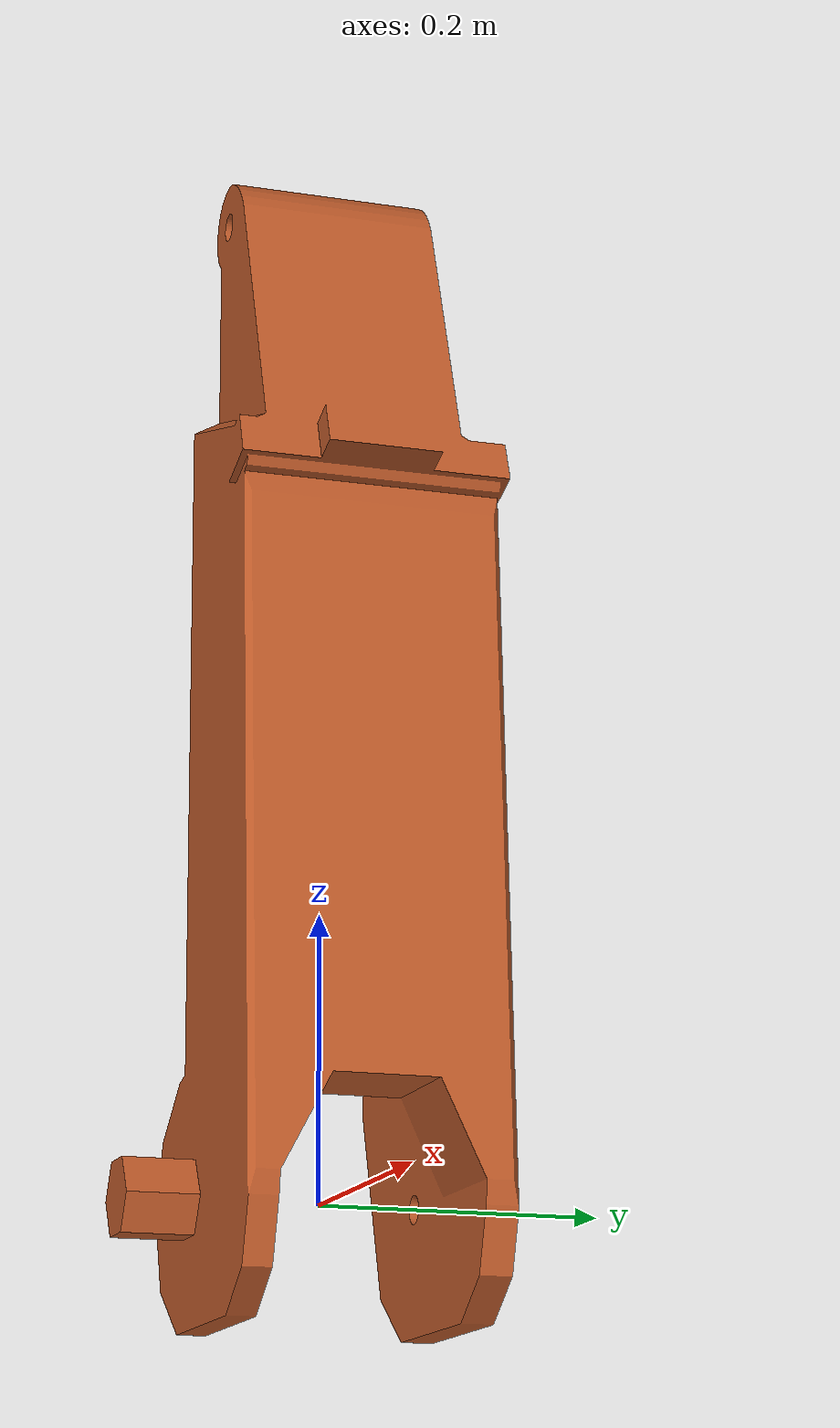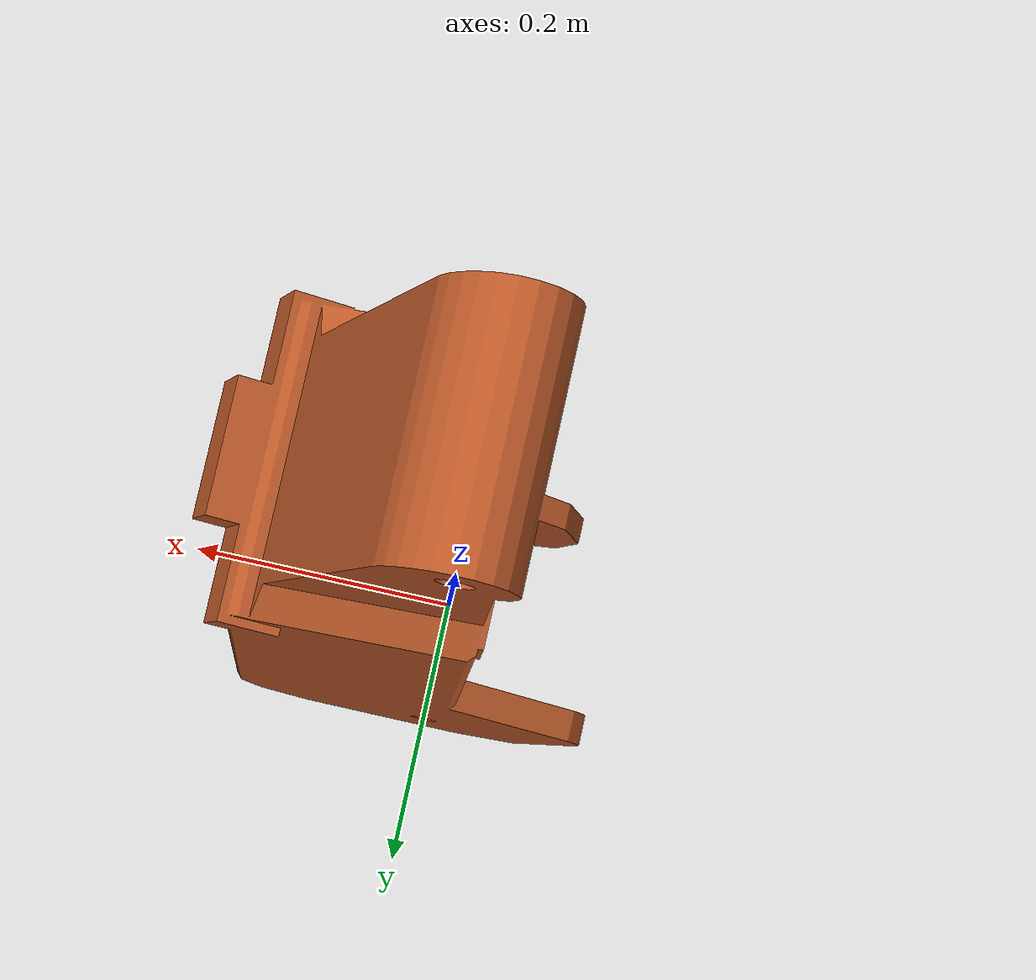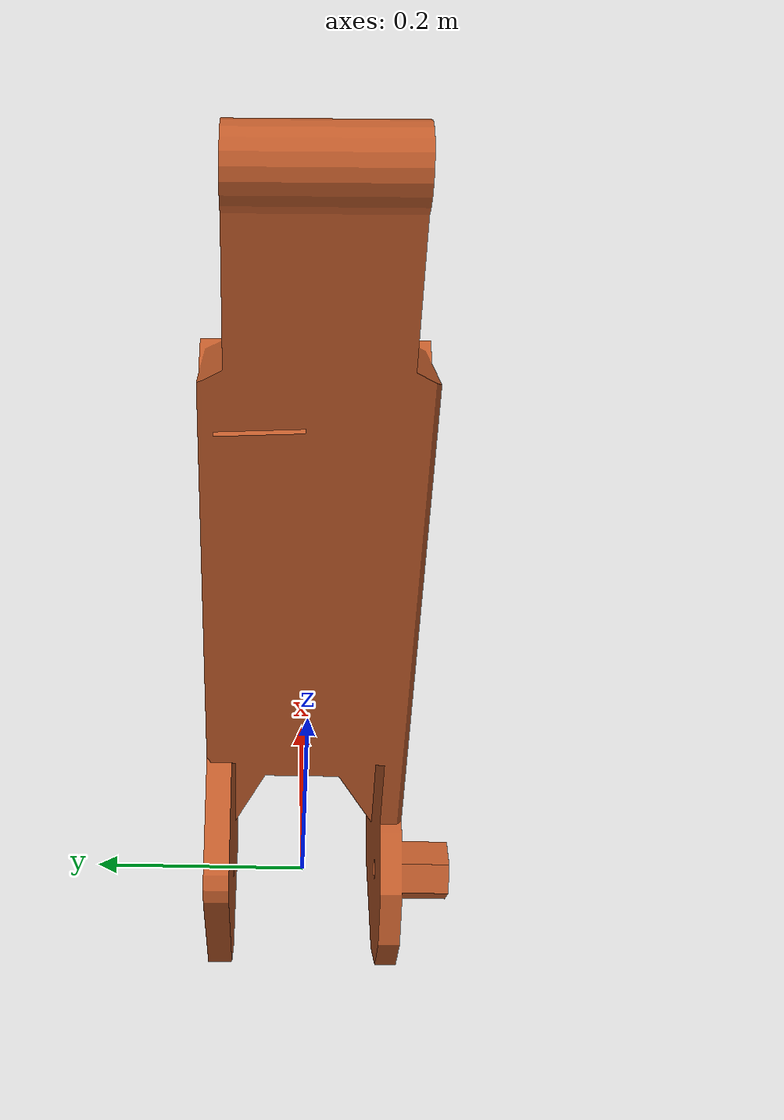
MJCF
<mujoco model="link_2">
  <default>
    <default class="visual">
      <geom group="2" type="mesh" contype="0" conaffinity="0"/>
    </default>
    <default class="collision">
      <geom group="3" type="mesh"/>
    </default>
  </default>
  <asset>
    <material name="colour_abb_orange" specular="0.5" shininess="0.25" rgba="0.737255 0.349020 0.160784 1.000000"/>
    <mesh file="link_2.obj"/>
  </asset>
  <worldbody>
    <body name="link_2">
      <geom material="colour_abb_orange" mesh="link_2" class="visual"/>
      <geom mesh="link_2" class="collision"/>
    </body>
  </worldbody>
</mujoco>
